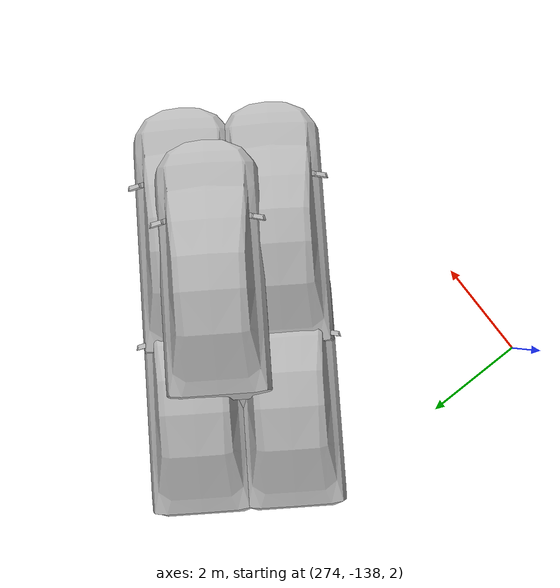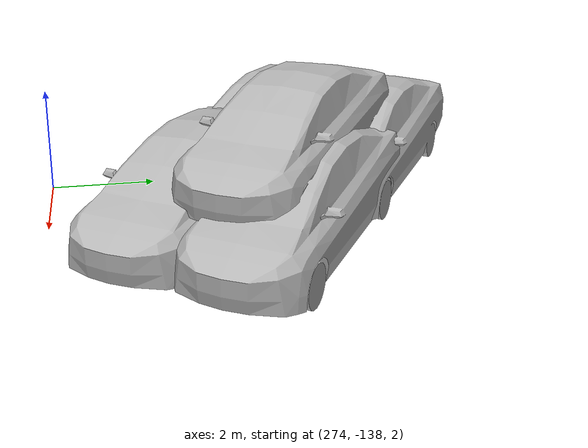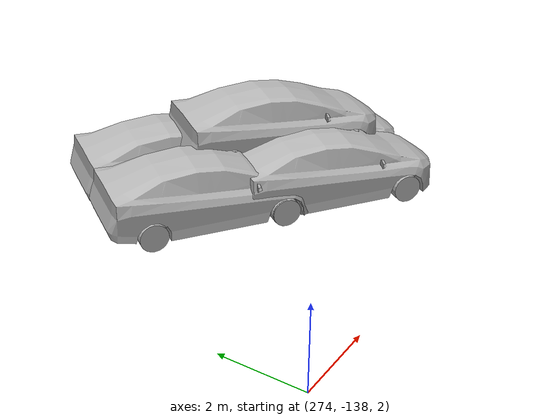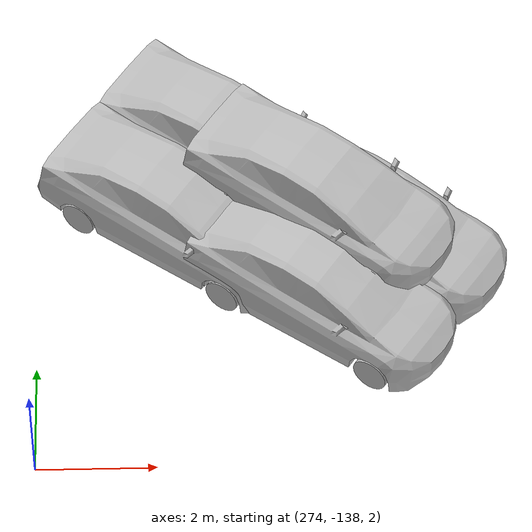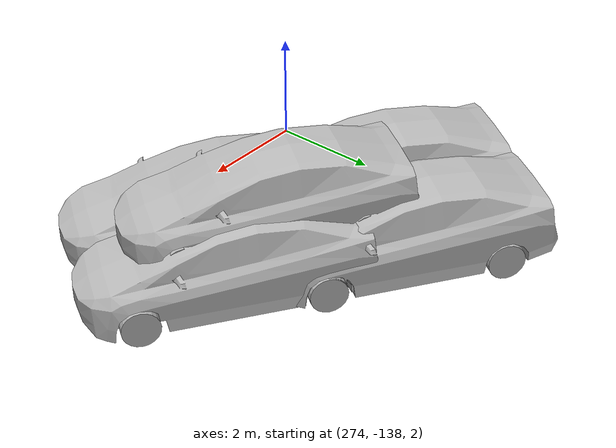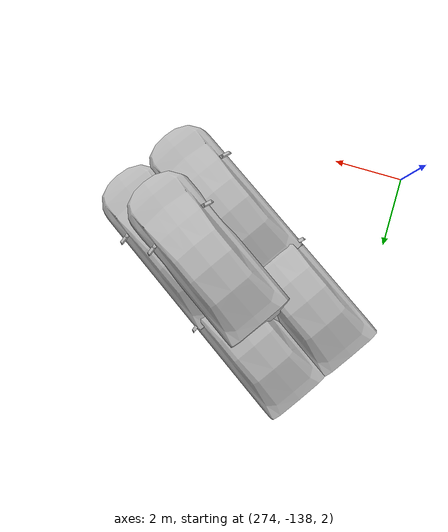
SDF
<sdf version="1.6">
 <world name="default">
  <include><uri>model://sun</uri></include>
  <include><pose>278.08 -134.22 2.86 0.02 0 0.97</pose><uri>model://prius_hybrid</uri></include>
 </world>
</sdf>

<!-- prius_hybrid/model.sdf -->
<sdf version="1.6">
  <model name="prius_hybrid">
    <pose>0 0 0.03 0 0 0</pose>
    <link name="chassis">
      <inertial>
        <mass>1326.0</mass>
        <pose>0 -0.266 0.48 0 0 0</pose>
        <inertia>
          <ixx>2581.13354740</ixx>
          <ixy>0.0</ixy>
          <iyy>591.30846112</iyy>
          <ixz>0.0</ixz>
          <iyz>0.0</iyz>
          <izz>2681.95008628</izz>
        </inertia>
      </inertial>

      <visual name="chassis_visual">
        <geometry>
          <mesh>
            <uri>model://prius_hybrid/meshes/Hybrid.obj</uri>
            <scale>0.01 0.01 0.01</scale>
            <submesh>
              <name>Hybrid</name>
              <center>false</center>
            </submesh>
          </mesh>
        </geometry>
      </visual>

      <visual name="interior_visual">
        <geometry>
          <mesh>
            <uri>model://prius_hybrid/meshes/Hybrid.obj</uri>
            <scale>0.01 0.01 0.01</scale>
            <submesh>
              <name>Hybrid_Interior</name>
              <center>false</center>
            </submesh>
          </mesh>
        </geometry>
      </visual>

      <visual name="windows_visual">
        <geometry>
          <mesh>
            <uri>model://prius_hybrid/meshes/Hybrid.obj</uri>
            <scale>0.01 0.01 0.01</scale>
            <submesh>
              <name>Hybrid_Windows</name>
              <center>false</center>
            </submesh>
          </mesh>
        </geometry>
      </visual>

      <collision name="chassis">
        <pose>0.0 0.05 0.625 0 0 0</pose>
        <geometry>
          <box>
            <size>1.7526 2.1 0.95</size>
          </box>
        </geometry>
      </collision>

      <collision name="front_bumper">
        <pose>0.0 -2.0 0.458488 0.0 0 0</pose>
        <geometry>
          <box>
            <size>1.337282 0.48 0.566691</size>
          </box>
        </geometry>
      </collision>

      <collision name="hood">
        <pose>0.0 -1.900842 0.676305 0.341247 0 0</pose>
        <geometry>
          <box>
            <size>1.597968 0.493107 0.265468</size>
          </box>
        </geometry>
      </collision>

      <collision name="windshield">
        <pose>0.0 -0.875105 1.032268 0.335476 0 0</pose>
        <geometry>
          <box>
            <size>1.168381 1.654253 0.272347</size>
          </box>
        </geometry>
      </collision>

      <collision name="top_front">
        <pose>0.0 0.161236 1.386042 0.135030 0 0</pose>
        <geometry>
          <box>
            <size>1.279154 0.625988 0.171868</size>
          </box>
        </geometry>
      </collision>

      <collision name="top_rear">
        <pose>0.0 0.817696 1.360069 -0.068997 0 0</pose>
        <geometry>
          <box>
            <size>1.285130 0.771189 0.226557</size>
          </box>
        </geometry>
      </collision>

      <collision name="rear_window">
        <pose>0.0 1.640531 1.175126 -0.262017 0 0</pose>
        <geometry>
          <box>
            <size>1.267845 1.116344 0.244286</size>
          </box>
        </geometry>
      </collision>

      <collision name="trunk">
        <pose>0.0 1.637059 0.888180 0.0 0 0</pose>
        <geometry>
          <box>
            <size>1.788064 1.138988 0.482746</size>
          </box>
        </geometry>
      </collision>

      <collision name="back_bumper">
        <pose>0.0 2.054454 0.577870 0.0 0 0</pose>
        <geometry>
          <box>
            <size>1.781650 0.512093 0.581427</size>
          </box>
        </geometry>
      </collision>
    </link>

    <link name="steering_wheel">
      <pose>0.357734 -0.627868 0.988243 -1.302101 0 0</pose>
      <inertial>
        <mass>1.0</mass>
        <inertia>
          <ixx>0.14583300</ixx>
          <ixy>0</ixy>
          <ixz>0</ixz>
          <iyy>0.14583300</iyy>
          <iyz>0</iyz>
          <izz>0.12500000</izz>
        </inertia>
      </inertial>
      <collision name="collision">
        <geometry>
          <cylinder>
            <radius>0.178172</radius>
            <length>0.041845</length>
          </cylinder>
        </geometry>
        <surface>
          <contact>
            <ode>
              <min_depth>0.003</min_depth>
            </ode>
          </contact>
        </surface>
      </collision>
      <visual name="visual">
        <pose>0 0 0 1.302101 0 0</pose>
        <geometry>
          <mesh>
            <uri>model://prius_hybrid/meshes/Hybrid.obj</uri>
            <scale>0.01 0.01 0.01</scale>
            <submesh>
              <name>Steering_Wheel</name>
              <center>true</center>
            </submesh>
          </mesh>
        </geometry>
      </visual>
    </link>

    <link name="front_left_wheel">
      <pose>0.76 -1.41 0.3 0 0 0</pose>
      <inertial>
        <mass>11</mass>
        <inertia>
          <ixx>0.58631238</ixx>
          <ixy>0.0</ixy>
          <iyy>0.33552910</iyy>
          <ixz>0.0</ixz>
          <iyz>0.0</iyz>
          <izz>0.33552910</izz>
        </inertia>
      </inertial>

      <visual name="visual">
        <pose>0.04 0.0 0.0 0 0 0</pose>
        <geometry>
          <mesh>
            <uri>model://prius_hybrid/meshes/Hybrid.obj</uri>
            <scale>0.01 0.01 0.01</scale>
            <submesh>
              <name>Wheel_Front_Left_</name>
              <center>true</center>
            </submesh>
          </mesh>
        </geometry>
      </visual>

      <collision name="collision">
        <pose>0.0 0.0 0.0 0 1.5707963267948966 0</pose>
        <geometry>
          <sphere>
            <radius>0.31265</radius>
          </sphere>
        </geometry>
        <surface>
          <friction>
            <ode>
              <mu>0.9</mu>
              <mu2>0.9</mu2>
              <slip1>0.0</slip1>
              <slip2>0.0</slip2>
            </ode>
          </friction>
          <contact>
            <ode>
              <min_depth>0.001</min_depth>
              <kp>1e9</kp>
            </ode>
          </contact>
        </surface>

      </collision>
    </link>

    <link name="front_right_wheel">
      <pose>-0.76 -1.41 0.3 0 0 0</pose>
      <inertial>
        <mass>11</mass>
        <inertia>
          <ixx>0.58631238</ixx>
          <ixy>0.0</ixy>
          <iyy>0.33552910</iyy>
          <ixz>0.0</ixz>
          <iyz>0.0</iyz>
          <izz>0.33552910</izz>
        </inertia>
      </inertial>
      <visual name="visual">
        <pose>-0.04 0.0 0.0 0 0 0</pose>
        <pose>0 0 0.0 0 0 0</pose>
        <geometry>
          <mesh>
            <uri>model://prius_hybrid/meshes/Hybrid.obj</uri>
            <scale>0.01 0.01 0.01</scale>
            <submesh>
              <name>Wheel_Front_Right</name>
              <center>true</center>
            </submesh>
          </mesh>
        </geometry>
      </visual>

      <collision name="collision">
        <pose>0.0 0.0 0.0 0 1.5707963267948966 0</pose>
        <geometry>
          <sphere>
            <radius>0.31265</radius>
          </sphere>
        </geometry>
        <surface>
          <friction>
            <ode>
              <mu>0.9</mu>
              <mu2>0.9</mu2>
              <slip1>0.0</slip1>
              <slip2>0.0</slip2>
            </ode>
          </friction>
          <contact>
            <ode>
              <min_depth>0.001</min_depth>
              <kp>1e9</kp>
            </ode>
          </contact>
        </surface>

      </collision>
    </link>

    <link name="rear_left_wheel">
      <pose>0.786 1.45 0.3 0 0 0</pose>
      <inertial>
        <mass>11</mass>
        <inertia>
          <ixx>0.58631238</ixx>
          <ixy>0.0</ixy>
          <iyy>0.33552910</iyy>
          <ixz>0.0</ixz>
          <iyz>0.0</iyz>
          <izz>0.33552910</izz>
        </inertia>
      </inertial>

      <visual name="visual">
        <pose>0.04 0.0 0.0 0 0 0</pose>
        <geometry>
          <mesh>
            <uri>model://prius_hybrid/meshes/Hybrid.obj</uri>
            <scale>0.01 0.01 0.01</scale>
            <submesh>
              <name>Wheel_Front_Left_</name>
              <center>true</center>
            </submesh>
          </mesh>
        </geometry>
      </visual>

      <collision name="collision">
        <pose>0.0 0.0 0.0 0 1.5707963267948966 0</pose>
        <geometry>
          <sphere>
            <radius>0.31265</radius>
          </sphere>
        </geometry>
        <surface>
          <friction>
            <ode>
              <mu>1.1</mu>
              <mu2>1.1</mu2>
              <slip1>0.0</slip1>
              <slip2>0.0</slip2>
            </ode>
          </friction>
          <contact>
            <ode>
              <min_depth>0.001</min_depth>
              <kp>1e9</kp>
            </ode>
          </contact>
        </surface>

      </collision>
    </link>

    <link name="rear_right_wheel">
      <pose>-0.786 1.45 0.3 0 0 0</pose>
      <inertial>
        <mass>11</mass>
        <inertia>
          <ixx>0.58631238</ixx>
          <ixy>0.0</ixy>
          <iyy>0.33552910</iyy>
          <ixz>0.0</ixz>
          <iyz>0.0</iyz>
          <izz>0.33552910</izz>
        </inertia>
      </inertial>
      <visual name="visual">
        <pose>-0.04 0.0 0.0 0 0 0</pose>
        <geometry>
          <mesh>
            <uri>model://prius_hybrid/meshes/Hybrid.obj</uri>
            <scale>0.01 0.01 0.01</scale>
            <submesh>
              <name>Wheel_Front_Right</name>
              <center>true</center>
            </submesh>
          </mesh>
        </geometry>
      </visual>

      <collision name="collision">
        <pose>0.0 0.0 0.0 0 1.5707963267948966 0</pose>
        <geometry>
          <sphere>
            <radius>0.31265</radius>
          </sphere>
        </geometry>
        <surface>
          <friction>
            <ode>
              <mu>1.1</mu>
              <mu2>1.1</mu2>
              <slip1>0.0</slip1>
              <slip2>0.0</slip2>
            </ode>
          </friction>
          <contact>
            <ode>
              <min_depth>0.001</min_depth>
              <kp>1e9</kp>
            </ode>
          </contact>
        </surface>
      </collision>
    </link>

    <joint type="universal" name="front_left_combined_joint">
      <pose>0 0 0 -0.08726646259971647 0 0</pose>
      <child>front_left_wheel</child>
      <parent>chassis</parent>
      <axis>
        <xyz>0 0 1</xyz>
        <limit>
          <!-- +- 50 degrees -->
          <lower>-0.8727</lower>
          <upper>0.8727</upper>
        </limit>
      </axis>
      <axis2>
        <xyz>1 0 0</xyz>
        <dynamics>
          <friction>18.0474092253</friction>
        </dynamics>
      </axis2>
    </joint>

    <joint type="universal" name="front_right_combined_joint">
      <pose>0 0 0 -0.08726646259971647 0 0</pose>
      <child>front_right_wheel</child>
      <parent>chassis</parent>
      <axis>
        <xyz>0 0 1</xyz>
        <limit>
          <!-- +- 50 degrees -->
          <lower>-0.8727</lower>
          <upper>0.8727</upper>
        </limit>
      </axis>
      <axis2>
        <xyz>1 0 0</xyz>
        <dynamics>
          <friction>18.0474092253</friction>
        </dynamics>
      </axis2>
    </joint>

    <link name="rear_axle">
      <pose>0 1.45 0.3 0 0 0</pose>
      <inertial>
        <mass>30.0</mass>
        <inertia>
          <ixx>0.08437499999999999</ixx>
          <ixy>0.0</ixy>
          <iyy>4.64581</iyy>
          <ixz>0.0</ixz>
          <iyz>0.0</iyz>
          <izz>4.64581</izz>
        </inertia>
      </inertial>
      <visual name="visual">
        <pose>0.0 0.0 0.0 0 1.5707963267948966 0</pose>
        <geometry>
          <cylinder>
            <length>1.357</length>
            <radius>0.075</radius>
          </cylinder>
        </geometry>
        <material>
          <script>
            <name>Gazebo/Grey</name>
            <uri>file://media/materials/scripts/gazebo.material</uri>
          </script>
        </material>
      </visual>
    </link>

    <joint type="revolute" name="rear_axle_joint">
      <child>rear_axle</child>
      <parent>chassis</parent>
      <axis>
        <xyz>0 1 0</xyz>
        <limit>
          <lower>-0.05089058524173028</lower>
          <upper>0.05089058524173028</upper>
        </limit>
        <dynamics>
          <spring_stiffness>20000.0</spring_stiffness>
          <damping>2000.0</damping>
        </dynamics>
      </axis>
    </joint>
    <joint type="revolute" name="rear_left_wheel_joint">
      <child>rear_left_wheel</child>
      <parent>rear_axle</parent>
      <axis>
        <xyz>1 0 0</xyz>
        <dynamics>
          <friction>12.031606150200002</friction>
        </dynamics>
      </axis>
    </joint>
    <joint type="revolute" name="rear_right_wheel_joint">
      <child>rear_right_wheel</child>
      <parent>rear_axle</parent>
      <axis>
        <xyz>1 0 0</xyz>
        <dynamics>
          <friction>12.031606150200002</friction>
        </dynamics>
      </axis>
    </joint>

    <joint name="steering_joint" type="revolute">
      <pose>-0.002 0 0 0 0 0</pose>
      <parent>chassis</parent>
      <child>steering_wheel</child>
      <axis>
        <xyz>0 0.964095 0.265556</xyz>
        <limit>
          <lower>-7.85</lower>
          <upper>7.85</upper>
        </limit>
        <dynamics>
          <damping>1.0</damping>
        </dynamics>
        <use_parent_model_frame>true</use_parent_model_frame>
      </axis>
      <physics>
        <ode>
          <cfm_damping>1</cfm_damping>
        </ode>
      </physics>
    </joint>

    <joint name="sensor_joint" type="fixed">
      <parent>chassis</parent>
      <child>sensors</child>
    </joint>

    <link name="sensors">
      <pose>0 -0.4 1.4 0 0.05 -1.5707</pose>
      <sensor name='front_camera_sensor' type='camera'>
        <update_rate>30</update_rate>
        <always_on>0</always_on>
        <camera name='front_camera'>
          <horizontal_fov>1.39626</horizontal_fov>
          <image>
            <width>800</width>
            <height>800</height>
            <format>R8G8B8</format>
          </image>
          <clip>
            <near>0.02</near>
            <far>300</far>
          </clip>
          <noise>
            <type>gaussian</type>
            <mean>0</mean>
            <stddev>0.007</stddev>
          </noise>
        </camera>
        <plugin name="plugin_name" filename="libgazebo_ros_camera.so">
            <ros>
              <namespace>demo</namespace>
              <argument>image_raw:=image_raw</argument>
              <argument>camera_info:=camera_info</argument>
            </ros>

            <!-- Set camera name. If empty, defaults to sensor name (i.e. "sensor_name") -->
            <camera_name>front_camera</camera_name>

            <!-- Set TF frame name. If empty, defaults to link name (i.e. "link_name") -->
            <frame_name>front_camera_sensor</frame_name>

            <hack_baseline>0.07</hack_baseline>

          </plugin>
      </sensor>
    </link>

    <plugin name='ackermann_drive' filename='libgazebo_ros_ackermann_drive.so'>

        <ros>
          <namespace>demo</namespace>
          <argument>cmd_vel:=cmd_demo</argument>
          <argument>odom:=odom_demo</argument>
          <argument>distance:=distance_demo</argument>
        </ros>

        <update_rate>100.0</update_rate>

        <!-- wheels -->
        <front_left_joint>front_left_combined_joint</front_left_joint>
        <front_right_joint>front_right_combined_joint</front_right_joint>
        <rear_left_joint>rear_left_wheel_joint</rear_left_joint>
        <rear_right_joint>rear_right_wheel_joint</rear_right_joint>
        <left_steering_joint>front_left_combined_joint</left_steering_joint>
        <right_steering_joint>front_right_combined_joint</right_steering_joint>
        <steering_wheel_joint>steering_joint</steering_wheel_joint>

        <!-- Max absolute steer angle for tyre in radians-->
        <!-- Any cmd_vel angular z greater than this would be capped -->
        <max_steer>0.6458</max_steer>

        <!-- Max absolute steering angle of steering wheel -->
        <max_steering_angle>7.85</max_steering_angle>

        <!-- Max absolute linear speed in m/s -->
        <max_speed>20</max_speed>

        <!-- PID tuning -->
        <left_steering_pid_gain>1500 0 1</left_steering_pid_gain>
        <left_steering_i_range>0 0</left_steering_i_range>
        <right_steering_pid_gain>1500 0 1</right_steering_pid_gain>
        <right_steering_i_range>0 0</right_steering_i_range>
        <linear_velocity_pid_gain>1000 0 1</linear_velocity_pid_gain>
        <linear_velocity_i_range>0 0</linear_velocity_i_range>

        <!-- output -->
        <publish_odom>true</publish_odom>
        <publish_odom_tf>true</publish_odom_tf>
        <publish_wheel_tf>true</publish_wheel_tf>
        <publish_distance>true</publish_distance>

        <odometry_frame>odom_demo</odometry_frame>
        <robot_base_frame>chassis</robot_base_frame>

      </plugin>

  </model>

</sdf>
